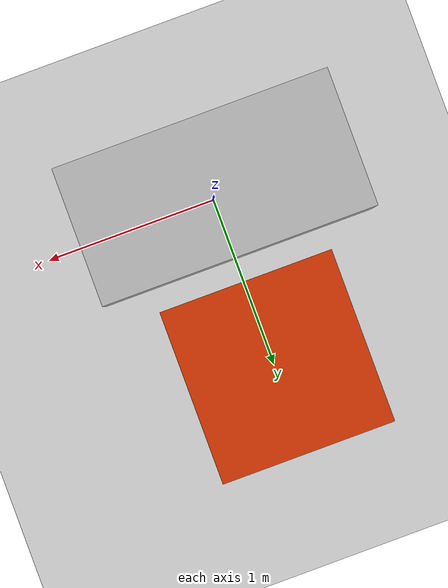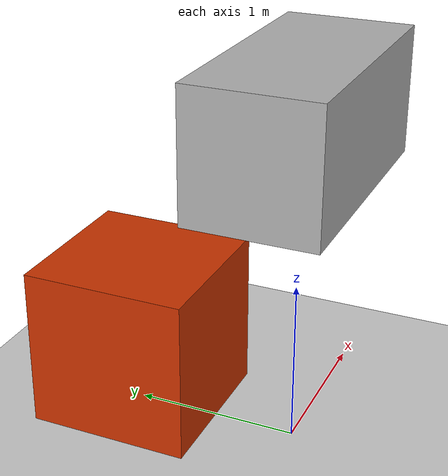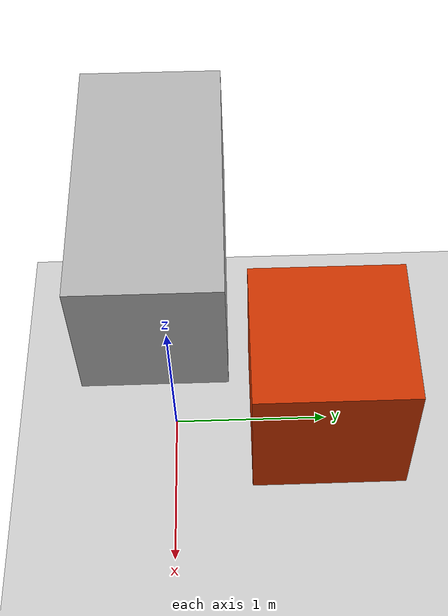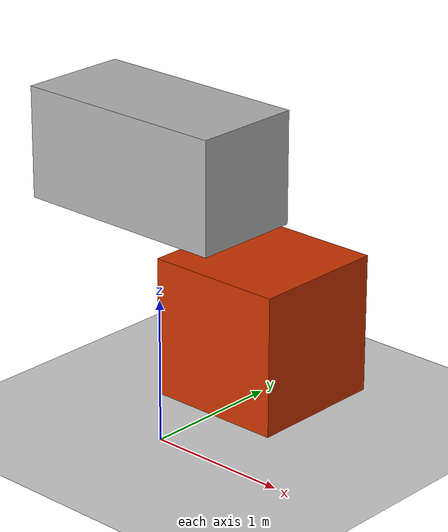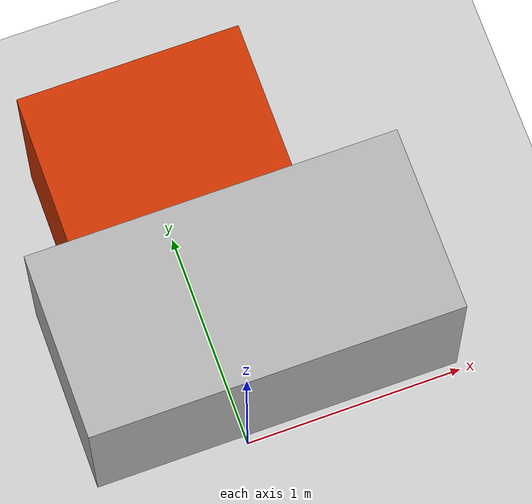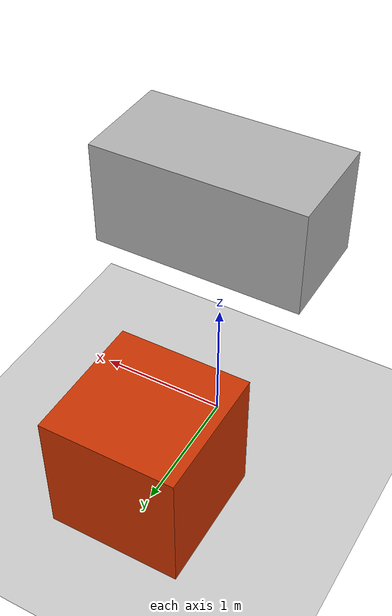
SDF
<sdf version='1.10'>
  <world name='empty'>
    <physics name='1ms' type='ignored'>
      <max_step_size>0.001</max_step_size>
      <real_time_factor>1</real_time_factor>
      <real_time_update_rate>1000</real_time_update_rate>
    </physics>
    <plugin name='gz::sim::systems::Physics' filename='gz-sim-physics-system'/>
    <plugin name='gz::sim::systems::UserCommands' filename='gz-sim-user-commands-system'/>
    <plugin name='gz::sim::systems::SceneBroadcaster' filename='gz-sim-scene-broadcaster-system'/>
    <plugin name='gz::sim::systems::Contact' filename='gz-sim-contact-system'/>
    <gravity>0 0 0</gravity>
    <magnetic_field>5.5644999999999998e-06 2.2875799999999999e-05 -4.2388400000000002e-05</magnetic_field>
    <atmosphere type='adiabatic'/>
    <scene>
      <ambient>0.400000006 0.400000006 0.400000006 1</ambient>
      <background>0.699999988 0.699999988 0.699999988 1</background>
      <shadows>true</shadows>
    </scene>

    <model name='ground_plane'>
      <static>true</static>
      <link name='link'>
        <collision name='collision'>
          <geometry>
            <plane>
              <normal>0 0 1</normal>
              <size>100 100</size>
            </plane>
          </geometry>
          <surface>
            <friction>
		<ode>
       		   <mu>0.0</mu>
        	   <mu2>0.0</mu2>
	        </ode>
            </friction>
            <bounce/>
            <contact/>
          </surface>
        </collision>
        <visual name='visual'>
          <geometry>
            <plane>
              <normal>0 0 1</normal>
              <size>100 100</size>
            </plane>
          </geometry>
          <material>
            <ambient>0.800000012 0.800000012 0.800000012 1</ambient>
            <diffuse>0.800000012 0.800000012 0.800000012 1</diffuse>
            <specular>0.800000012 0.800000012 0.800000012 1</specular>
          </material>
        </visual>
        <pose>0 0 0 0 0 0</pose>
        <inertial>
          <pose>0 0 0 0 0 0</pose>
          <mass>1</mass>
          <inertia>
            <ixx>1</ixx>
            <ixy>0</ixy>
            <ixz>0</ixz>
            <iyy>1</iyy>
            <iyz>0</iyz>
            <izz>1</izz>
          </inertia>
        </inertial>
        <enable_wind>false</enable_wind>
      </link>
      <pose>0 0 0 0 0 0</pose>
      <self_collide>false</self_collide>
    </model>

    <model name='box'>
      <pose>0 0 2 0 0 0</pose>

      <link name='box_link'>
        <inertial>
          <inertia>
            <ixx>1</ixx>
            <ixy>0</ixy>
            <ixz>0</ixz>
            <iyy>1</iyy>
            <iyz>0</iyz>
            <izz>1</izz>
          </inertia>
          <mass>1</mass>
          <pose>0 0 0 0 0 0</pose>
        </inertial>
        <collision name='box_collision'>
          <geometry>
            <box>
              <size>1.5 0.75 0.75</size>
            </box>
          </geometry>
          <surface>
            <friction>
              <ode/>
            </friction>
            <bounce/>
            <contact/>
          </surface>
        </collision>
        <visual name='box_visual'>
          <geometry>
            <box>
              <size>1.5 0.75 0.75</size>
            </box>
          </geometry>
          <material>
            <ambient>0.300000012 0.300000012 0.300000012 1</ambient>
            <diffuse>0.699999988 0.699999988 0.699999988 1</diffuse>
            <specular>1 1 1 1</specular>
          </material>
        </visual>

        <sensor name="full_2d" type="boundingbox_camera">
          <topic>boxes_full_2d</topic>
          <camera>
            <box_type>full_2d</box_type>
            <horizontal_fov>1.047</horizontal_fov>
            <image>
              <width>800</width>
              <height>600</height>
            </image>
            <clip>
              <near>0.1</near>
              <far>10</far>
            </clip>
            <save enabled="true">
              <path>bounding_box_full_2d_data</path>
            </save>
          </camera>
          <always_on>1</always_on>
          <update_rate>30</update_rate>
          <visualize>true</visualize>
        </sensor>

        <enable_wind>false</enable_wind>

      </link>
      <static>false</static>
      <self_collide>false</self_collide>

      <plugin
        filename="Position_Control"
        name="gz::sim::v7::systems::PositionController">
        <timestep_precision>10</timestep_precision>
        <pose_topic>box</pose_topic>
        <file_topic>file</file_topic>
        <xyz_offset> 0 0 0</xyz_offset>
        <rpy_offset> 0 0 0</rpy_offset>
      </plugin>

    </model>

    <model name="box2">
      <plugin filename="gz-sim-label-system" name="gz::sim::systems::Label">
        <label>10</label>
      </plugin>
      <pose>0 1 0.5 0 0 0</pose>
      <link name="box_link2">
        <inertial>
          <inertia>
            <ixx>1</ixx>
            <ixy>0</ixy>
            <ixz>0</ixz>
            <iyy>1</iyy>
            <iyz>0</iyz>
            <izz>1</izz>
          </inertia>
          <mass>1.0</mass>
        </inertial>
        <collision name="box_collision2">
          <geometry>
            <box>
              <size>1 1 1</size>
            </box>
          </geometry>
        </collision>

        <visual name="box_visual2">
          <geometry>
            <box>
              <size>1 1 1</size>
            </box>
          </geometry>
          <material>
            <ambient>1 0 0 1</ambient>
            <diffuse>0.8 0.2 0 1</diffuse>
            <specular>0.8 0 0 1</specular>
          </material>
        </visual>
      </link>
    </model>

    <light name='sun' type='directional'>
      <pose>0 0 10 0 0 0</pose>
      <cast_shadows>true</cast_shadows>
      <intensity>1</intensity>
      <direction>-0.5 0.10000000000000001 -0.90000000000000002</direction>
      <diffuse>0.800000012 0.800000012 0.800000012 1</diffuse>
      <specular>0.200000003 0.200000003 0.200000003 1</specular>
      <attenuation>
        <range>1000</range>
        <linear>0.01</linear>
        <constant>0.90000000000000002</constant>
        <quadratic>0.001</quadratic>
      </attenuation>
      <spot>
        <inner_angle>0</inner_angle>
        <outer_angle>0</outer_angle>
        <falloff>0</falloff>
      </spot>
    </light>
  </world>
</sdf>
